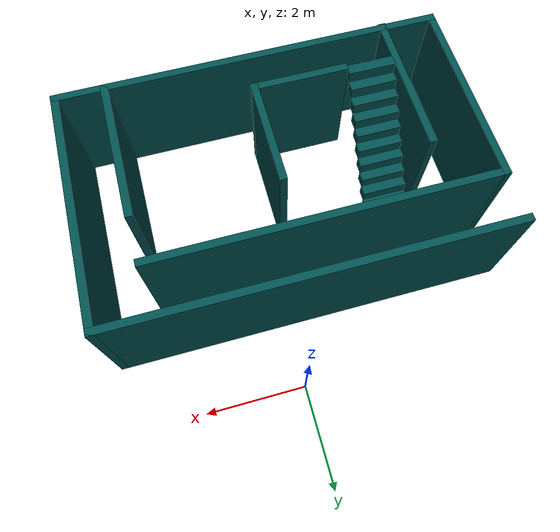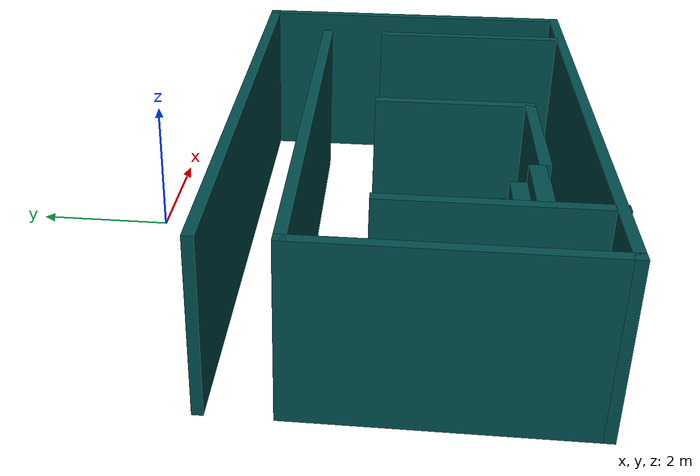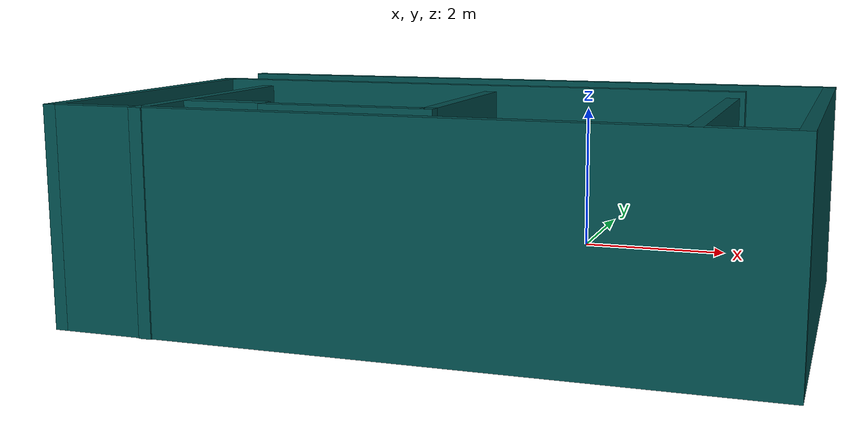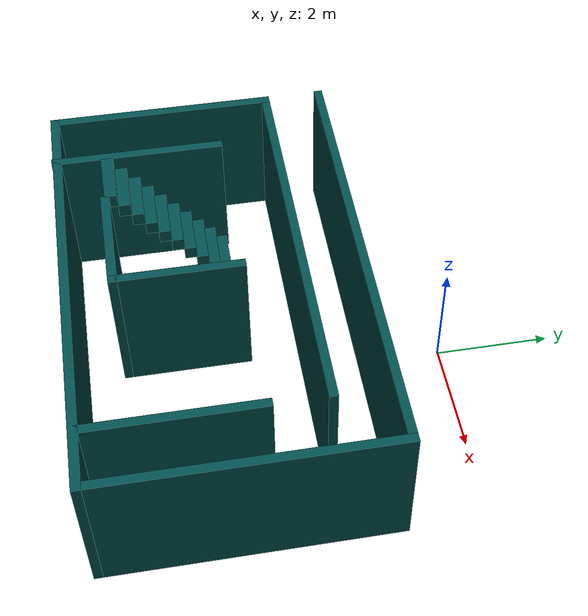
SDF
<?xml version='1.0'?>
<sdf version='1.7'>
  <model name='house2022'>
    <pose>-0.546 -3.16472 0 0 -0 0</pose>
    <link name='Stairs_1'>
      <visual name='Stairs_1_Visual_0'>
        <pose>-2.31393 -0.308419 0.125 0 -0 0</pose>
        <geometry>
          <box>
            <size>0.965 0.2109 0.25</size>
          </box>
        </geometry>
        <material>
          <ambient>0. 0.3 0.3 1</ambient>
          <diffuse>0. 0.3 0.3 1</diffuse>
          <specular>0. 0.3 0.3 1</specular>
        </material>
        <meta>
          <layer>0</layer>
        </meta>
      </visual>
      <collision name='Stairs_1_Collision_0'>
        <geometry>
          <box>
            <size>0.965 0.2109 0.25</size>
          </box>
        </geometry>
        <pose>-2.31393 -0.308419 0.125 0 -0 0</pose>
      </collision>
      <visual name='Stairs_1_Visual_1'>
        <pose>-2.31393 -0.519319 0.375 0 -0 0</pose>
        <geometry>
          <box>
            <size>0.965 0.2109 0.25</size>
          </box>
        </geometry>
        <material>
          <ambient>0. 0.3 0.3 1</ambient>
          <diffuse>0. 0.3 0.3 1</diffuse>
          <specular>0. 0.3 0.3 1</specular>
        </material>
        <meta>
          <layer>0</layer>
        </meta>
      </visual>
      <collision name='Stairs_1_Collision_1'>
        <geometry>
          <box>
            <size>0.965 0.2109 0.25</size>
          </box>
        </geometry>
        <pose>-2.31393 -0.519319 0.375 0 -0 0</pose>
      </collision>
      <visual name='Stairs_1_Visual_2'>
        <pose>-2.31393 -0.730219 0.625 0 -0 0</pose>
        <geometry>
          <box>
            <size>0.965 0.2109 0.25</size>
          </box>
        </geometry>
        <material>
          <ambient>0. 0.3 0.3 1</ambient>
          <diffuse>0. 0.3 0.3 1</diffuse>
          <specular>0. 0.3 0.3 1</specular>
        </material>
        <meta>
          <layer>0</layer>
        </meta>
      </visual>
      <collision name='Stairs_1_Collision_2'>
        <geometry>
          <box>
            <size>0.965 0.2109 0.25</size>
          </box>
        </geometry>
        <pose>-2.31393 -0.730219 0.625 0 -0 0</pose>
      </collision>
      <visual name='Stairs_1_Visual_3'>
        <pose>-2.31393 -0.941119 0.875 0 -0 0</pose>
        <geometry>
          <box>
            <size>0.965 0.2109 0.25</size>
          </box>
        </geometry>
        <material>
          <ambient>0. 0.3 0.3 1</ambient>
          <diffuse>0. 0.3 0.3 1</diffuse>
          <specular>0. 0.3 0.3 1</specular>
        </material>
        <meta>
          <layer>0</layer>
        </meta>
      </visual>
      <collision name='Stairs_1_Collision_3'>
        <geometry>
          <box>
            <size>0.965 0.2109 0.25</size>
          </box>
        </geometry>
        <pose>-2.31393 -0.941119 0.875 0 -0 0</pose>
      </collision>
      <visual name='Stairs_1_Visual_4'>
        <pose>-2.31393 -1.15202 1.125 0 -0 0</pose>
        <geometry>
          <box>
            <size>0.965 0.2109 0.25</size>
          </box>
        </geometry>
        <material>
          <ambient>0. 0.3 0.3 1</ambient>
          <diffuse>0. 0.3 0.3 1</diffuse>
          <specular>0. 0.3 0.3 1</specular>
        </material>
        <meta>
          <layer>0</layer>
        </meta>
      </visual>
      <collision name='Stairs_1_Collision_4'>
        <geometry>
          <box>
            <size>0.965 0.2109 0.25</size>
          </box>
        </geometry>
        <pose>-2.31393 -1.15202 1.125 0 -0 0</pose>
      </collision>
      <visual name='Stairs_1_Visual_5'>
        <pose>-2.31393 -1.36292 1.375 0 -0 0</pose>
        <geometry>
          <box>
            <size>0.965 0.2109 0.25</size>
          </box>
        </geometry>
        <material>
          <ambient>0. 0.3 0.3 1</ambient>
          <diffuse>0. 0.3 0.3 1</diffuse>
          <specular>0. 0.3 0.3 1</specular>
        </material>
        <meta>
          <layer>0</layer>
        </meta>
      </visual>
      <collision name='Stairs_1_Collision_5'>
        <geometry>
          <box>
            <size>0.965 0.2109 0.25</size>
          </box>
        </geometry>
        <pose>-2.31393 -1.36292 1.375 0 -0 0</pose>
      </collision>
      <visual name='Stairs_1_Visual_6'>
        <pose>-2.31393 -1.57382 1.625 0 -0 0</pose>
        <geometry>
          <box>
            <size>0.965 0.2109 0.25</size>
          </box>
        </geometry>
        <material>
          <ambient>0. 0.3 0.3 1</ambient>
          <diffuse>0. 0.3 0.3 1</diffuse>
          <specular>0. 0.3 0.3 1</specular>
        </material>
        <meta>
          <layer>0</layer>
        </meta>
      </visual>
      <collision name='Stairs_1_Collision_6'>
        <geometry>
          <box>
            <size>0.965 0.2109 0.25</size>
          </box>
        </geometry>
        <pose>-2.31393 -1.57382 1.625 0 -0 0</pose>
      </collision>
      <visual name='Stairs_1_Visual_7'>
        <pose>-2.31393 -1.78472 1.875 0 -0 0</pose>
        <geometry>
          <box>
            <size>0.965 0.2109 0.25</size>
          </box>
        </geometry>
        <material>
          <ambient>0. 0.3 0.3 1</ambient>
          <diffuse>0. 0.3 0.3 1</diffuse>
          <specular>0. 0.3 0.3 1</specular>
        </material>
        <meta>
          <layer>0</layer>
        </meta>
      </visual>
      <collision name='Stairs_1_Collision_7'>
        <geometry>
          <box>
            <size>0.965 0.2109 0.25</size>
          </box>
        </geometry>
        <pose>-2.31393 -1.78472 1.875 0 -0 0</pose>
      </collision>
      <visual name='Stairs_1_Visual_8'>
        <pose>-2.31393 -1.99562 2.125 0 -0 0</pose>
        <geometry>
          <box>
            <size>0.965 0.2109 0.25</size>
          </box>
        </geometry>
        <material>
          <ambient>0. 0.3 0.3 1</ambient>
          <diffuse>0. 0.3 0.3 1</diffuse>
          <specular>0. 0.3 0.3 1</specular>
        </material>
        <meta>
          <layer>0</layer>
        </meta>
      </visual>
      <collision name='Stairs_1_Collision_8'>
        <geometry>
          <box>
            <size>0.965 0.2109 0.25</size>
          </box>
        </geometry>
        <pose>-2.31393 -1.99562 2.125 0 -0 0</pose>
      </collision>
      <visual name='Stairs_1_Visual_9'>
        <pose>-2.31393 -2.20652 2.375 0 -0 0</pose>
        <geometry>
          <box>
            <size>0.965 0.2109 0.25</size>
          </box>
        </geometry>
        <material>
          <ambient>0. 0.3 0.3 1</ambient>
          <diffuse>0. 0.3 0.3 1</diffuse>
          <specular>0. 0.3 0.3 1</specular>
        </material>
        <meta>
          <layer>0</layer>
        </meta>
      </visual>
      <collision name='Stairs_1_Collision_9'>
        <geometry>
          <box>
            <size>0.965 0.2109 0.25</size>
          </box>
        </geometry>
        <pose>-2.31393 -2.20652 2.375 0 -0 0</pose>
      </collision>
    </link>
    <link name='Wall_10'>
      <collision name='Wall_10_Collision'>
        <geometry>
          <box>
            <size>8 0.15 2.5</size>
          </box>
        </geometry>
        <pose>0 0 1.25 0 -0 0</pose>
      </collision>
      <visual name='Wall_10_Visual'>
        <pose>0 0 1.25 0 -0 0</pose>
        <geometry>
          <box>
            <size>8 0.15 2.5</size>
          </box>
        </geometry>
        <material>
          <ambient>0. 0.3 0.3 1</ambient>
          <diffuse>0. 0.3 0.3 1</diffuse>
          <specular>0. 0.3 0.3 1</specular>
        </material>
        <meta>
          <layer>0</layer>
        </meta>
      </visual>
      <pose>0 -3.07028 0 0 -0 3.14159</pose>
    </link>
    <link name='Wall_13'>
      <collision name='Wall_13_Collision'>
        <geometry>
          <box>
            <size>4 0.15 2.5</size>
          </box>
        </geometry>
        <pose>0 0 1.25 0 -0 0</pose>
      </collision>
      <visual name='Wall_13_Visual'>
        <pose>0 0 1.25 0 -0 0</pose>
        <geometry>
          <box>
            <size>4 0.15 2.5</size>
          </box>
        </geometry>
        <material>
          <ambient>0. 0.3 0.3 1</ambient>
          <diffuse>0. 0.3 0.3 1</diffuse>
          <specular>0. 0.3 0.3 1</specular>
        </material>
        <meta>
          <layer>0</layer>
        </meta>
      </visual>
      <pose>-3.925 -1.14528 0 0 -0 1.5708</pose>
    </link>
    <link name='Wall_14'>
      <collision name='Wall_14_Collision'>
        <geometry>
          <box>
            <size>7 0.15 2.5</size>
          </box>
        </geometry>
        <pose>0 0 1.25 0 -0 0</pose>
      </collision>
      <visual name='Wall_14_Visual'>
        <pose>0 0 1.25 0 -0 0</pose>
        <geometry>
          <box>
            <size>7 0.15 2.5</size>
          </box>
        </geometry>
        <material>
          <ambient>0. 0.3 0.3 1</ambient>
          <diffuse>0. 0.3 0.3 1</diffuse>
          <specular>0. 0.3 0.3 1</specular>
        </material>
        <meta>
          <layer>0</layer>
        </meta>
      </visual>
      <pose>-0.5 0.77972 0 0 -0 0</pose>
    </link>
    <link name='Wall_16'>
      <collision name='Wall_16_Collision'>
        <geometry>
          <box>
            <size>3 0.15 2.5</size>
          </box>
        </geometry>
        <pose>0 0 1.25 0 -0 0</pose>
      </collision>
      <visual name='Wall_16_Visual'>
        <pose>0 0 1.25 0 -0 0</pose>
        <geometry>
          <box>
            <size>3 0.15 2.5</size>
          </box>
        </geometry>
        <material>
          <ambient>0. 0.3 0.3 1</ambient>
          <diffuse>0. 0.3 0.3 1</diffuse>
          <specular>0. 0.3 0.3 1</specular>
        </material>
        <meta>
          <layer>0</layer>
        </meta>
      </visual>
      <pose>2.94732 -1.63022 0 0 -0 -1.5708</pose>
    </link>
    <link name='Wall_18'>
      <collision name='Wall_18_Collision'>
        <geometry>
          <box>
            <size>3 0.15 2.5</size>
          </box>
        </geometry>
        <pose>0 0 1.25 0 -0 0</pose>
      </collision>
      <visual name='Wall_18_Visual'>
        <pose>0 0 1.25 0 -0 0</pose>
        <geometry>
          <box>
            <size>3 0.15 2.5</size>
          </box>
        </geometry>
        <material>
          <ambient>0. 0.3 0.3 1</ambient>
          <diffuse>0. 0.3 0.3 1</diffuse>
          <specular>0. 0.3 0.3 1</specular>
        </material>
        <meta>
          <layer>0</layer>
        </meta>
      </visual>
      <pose>-2.86018 -1.66472 0 0 -0 -1.5708</pose>
    </link>
    <link name='Wall_20'>
      <collision name='Wall_20_Collision'>
        <geometry>
          <box>
            <size>2.25 0.15 2.5</size>
          </box>
        </geometry>
        <pose>0 0 1.25 0 -0 0</pose>
      </collision>
      <visual name='Wall_20_Visual'>
        <pose>0 0 1.25 0 -0 0</pose>
        <geometry>
          <box>
            <size>2.25 0.15 2.5</size>
          </box>
        </geometry>
        <material>
          <ambient>0. 0.3 0.3 1</ambient>
          <diffuse>0. 0.3 0.3 1</diffuse>
          <specular>0. 0.3 0.3 1</specular>
        </material>
        <meta>
          <layer>0</layer>
        </meta>
      </visual>
      <pose>0.083822 -1.25522 0 0 -0 -1.5708</pose>
    </link>
    <link name='Wall_21'>
      <collision name='Wall_21_Collision'>
        <geometry>
          <box>
            <size>2 0.15 2.5</size>
          </box>
        </geometry>
        <pose>0 0 1.25 0 -0 0</pose>
      </collision>
      <visual name='Wall_21_Visual'>
        <pose>0 0 1.25 0 -0 0</pose>
        <geometry>
          <box>
            <size>2 0.15 2.5</size>
          </box>
        </geometry>
        <material>
          <ambient>0. 0.3 0.3 1</ambient>
          <diffuse>0. 0.3 0.3 1</diffuse>
          <specular>0. 0.3 0.3 1</specular>
        </material>
        <meta>
          <layer>0</layer>
        </meta>
      </visual>
      <pose>-0.841178 -2.30522 0 0 -0 3.14159</pose>
    </link>
    <link name='Wall_6'>
      <collision name='Wall_6_Collision'>
        <geometry>
          <box>
            <size>8 0.15 2.5</size>
          </box>
        </geometry>
        <pose>0 0 1.25 0 -0 0</pose>
      </collision>
      <visual name='Wall_6_Visual'>
        <pose>0 0 1.25 0 -0 0</pose>
        <geometry>
          <box>
            <size>8 0.15 2.5</size>
          </box>
        </geometry>
        <material>
          <ambient>0. 0.3 0.3 1</ambient>
          <diffuse>0. 0.3 0.3 1</diffuse>
          <specular>0. 0.3 0.3 1</specular>
        </material>
        <meta>
          <layer>0</layer>
        </meta>
      </visual>
      <pose>0 1.77972 0 0 -0 3.14159</pose>
    </link>
    <link name='Wall_9'>
      <collision name='Wall_9_Collision'>
        <geometry>
          <box>
            <size>5 0.15 2.5</size>
          </box>
        </geometry>
        <pose>0 0 1.25 0 -0 0</pose>
      </collision>
      <visual name='Wall_9_Visual'>
        <pose>0 0 1.25 0 -0 0</pose>
        <geometry>
          <box>
            <size>5 0.15 2.5</size>
          </box>
        </geometry>
        <material>
          <ambient>0. 0.3 0.3 1</ambient>
          <diffuse>0. 0.3 0.3 1</diffuse>
          <specular>0. 0.3 0.3 1</specular>
        </material>
        <meta>
          <layer>0</layer>
        </meta>
      </visual>
      <pose>3.925 -0.64528 0 0 -0 -1.5708</pose>
    </link>
    <static>1</static>
  </model>
</sdf>
